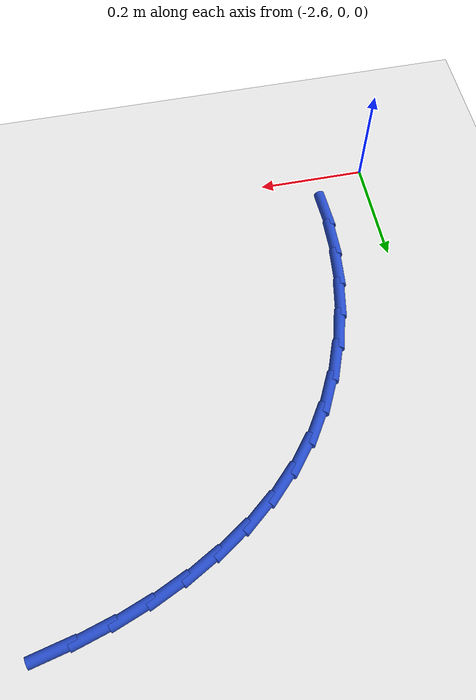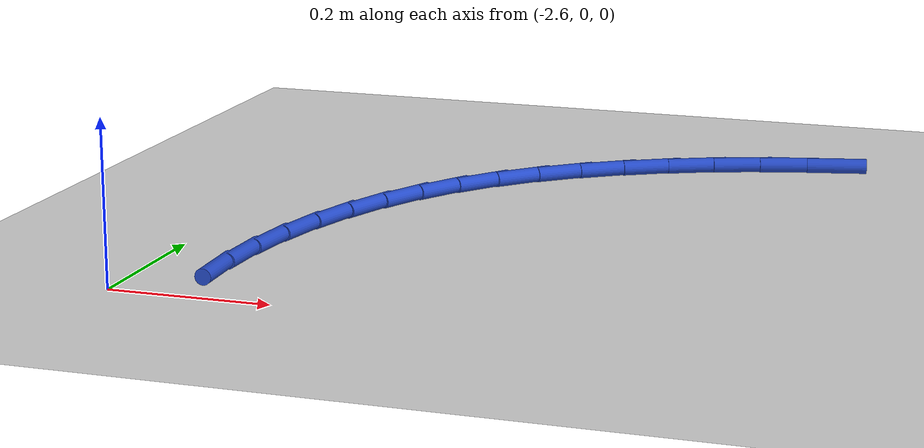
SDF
<sdf version="1.6">
 <world name="default">
  <model name="ground_plane">
   <static>1</static>
   <link name="link">
    <collision name="collision">
     <geometry><plane><normal>0 0 1</normal><size>100 100</size></plane></geometry>
     <surface><friction><ode><mu>100</mu><mu2>50</mu2></ode></friction></surface>
    </collision>
    <visual name="visual">
     <cast_shadows>0</cast_shadows>
     <geometry><plane><normal>0 0 1</normal><size>100 100</size></plane></geometry>
     <material>
      <script><uri>file://media/materials/scripts/gazebo.material</uri><name>Gazebo/WhiteGlow</name></script>
     </material>
    </visual>
   </link>
  </model>
  <model name="line">
   <link name="link_49">
    <pose>-1.9124163300353045 0.7932005984416014 0.01 0 1.57 0.2266838382392653</pose>
    <collision name="collision">
     <geometry><cylinder><radius>0.01</radius><length>0.08</length></cylinder></geometry>
    </collision>
    <visual name="visual">
     <material>
      <script><name>Gazebo/Blue</name><uri>file://media/materials/scripts/gazebo.material</uri></script>
     </material>
     <geometry><cylinder><radius>0.01</radius><length>0.08</length></cylinder></geometry>
    </visual>
   </link>
   <link name="link_50">
    <pose>-1.9746820280121145 0.7788391335463097 0.01 0 1.57 0.29029542727341956</pose>
    <collision name="collision">
     <geometry><cylinder><radius>0.01</radius><length>0.08</length></cylinder></geometry>
    </collision>
    <visual name="visual">
     <material>
      <script><name>Gazebo/Blue</name><uri>file://media/materials/scripts/gazebo.material</uri></script>
     </material>
     <geometry><cylinder><radius>0.01</radius><length>0.08</length></cylinder></geometry>
    </visual>
   </link>
   <link name="link_51">
    <pose>-2.0353917045752734 0.7607030556330867 0.01 0 1.57 0.3588798051660564</pose>
    <collision name="collision">
     <geometry><cylinder><radius>0.01</radius><length>0.08</length></cylinder></geometry>
    </collision>
    <visual name="visual">
     <material>
      <script><name>Gazebo/Blue</name><uri>file://media/materials/scripts/gazebo.material</uri></script>
     </material>
     <geometry><cylinder><radius>0.01</radius><length>0.08</length></cylinder></geometry>
    </visual>
   </link>
   <link name="link_52">
    <pose>-2.0941190779093177 0.7386729798332827 0.01 0 1.57 0.43314193551123753</pose>
    <collision name="collision">
     <geometry><cylinder><radius>0.01</radius><length>0.08</length></cylinder></geometry>
    </collision>
    <visual name="visual">
     <material>
      <script><name>Gazebo/Blue</name><uri>file://media/materials/scripts/gazebo.material</uri></script>
     </material>
     <geometry><cylinder><radius>0.01</radius><length>0.08</length></cylinder></geometry>
    </visual>
   </link>
   <link name="link_53">
    <pose>-2.150437866198786 0.7126295212782485 0.01 0 1.57 0.5136883938624911</pose>
    <collision name="collision">
     <geometry><cylinder><radius>0.01</radius><length>0.08</length></cylinder></geometry>
    </collision>
    <visual name="visual">
     <material>
      <script><name>Gazebo/Blue</name><uri>file://media/materials/scripts/gazebo.material</uri></script>
     </material>
     <geometry><cylinder><radius>0.01</radius><length>0.08</length></cylinder></geometry>
    </visual>
   </link>
   <link name="link_54">
    <pose>-2.2039217876282144 0.6824532950993341 0.01 0 1.57 0.6009370354927155</pose>
    <collision name="collision">
     <geometry><cylinder><radius>0.01</radius><length>0.08</length></cylinder></geometry>
    </collision>
    <visual name="visual">
     <material>
      <script><name>Gazebo/Blue</name><uri>file://media/materials/scripts/gazebo.material</uri></script>
     </material>
     <geometry><cylinder><radius>0.01</radius><length>0.08</length></cylinder></geometry>
    </visual>
   </link>
   <link name="link_55">
    <pose>-2.25414456038214 0.6480249164278903 0.01 0 1.57 0.6949977475820621</pose>
    <collision name="collision">
     <geometry><cylinder><radius>0.01</radius><length>0.08</length></cylinder></geometry>
    </collision>
    <visual name="visual">
     <material>
      <script><name>Gazebo/Blue</name><uri>file://media/materials/scripts/gazebo.material</uri></script>
     </material>
     <geometry><cylinder><radius>0.01</radius><length>0.08</length></cylinder></geometry>
    </visual>
   </link>
   <link name="link_56">
    <pose>-2.3006799026451006 0.6092250003952681 0.01 0 1.57 0.7955387943875205</pose>
    <collision name="collision">
     <geometry><cylinder><radius>0.01</radius><length>0.08</length></cylinder></geometry>
    </collision>
    <visual name="visual">
     <material>
      <script><name>Gazebo/Blue</name><uri>file://media/materials/scripts/gazebo.material</uri></script>
     </material>
     <geometry><cylinder><radius>0.01</radius><length>0.08</length></cylinder></geometry>
    </visual>
   </link>
   <link name="link_57">
    <pose>-2.343101532601632 0.5659341621328176 0.01 0 1.57 0.9016722590337981</pose>
    <collision name="collision">
     <geometry><cylinder><radius>0.01</radius><length>0.08</length></cylinder></geometry>
    </collision>
    <visual name="visual">
     <material>
      <script><name>Gazebo/Blue</name><uri>file://media/materials/scripts/gazebo.material</uri></script>
     </material>
     <geometry><cylinder><radius>0.01</radius><length>0.08</length></cylinder></geometry>
    </visual>
   </link>
   <link name="link_58">
    <pose>-2.380983168436272 0.518033016771889 0.01 0 1.57 1.0107775627489453</pose>
    <collision name="collision">
     <geometry><cylinder><radius>0.01</radius><length>0.08</length></cylinder></geometry>
    </collision>
    <visual name="visual">
     <material>
      <script><name>Gazebo/Blue</name><uri>file://media/materials/scripts/gazebo.material</uri></script>
     </material>
     <geometry><cylinder><radius>0.01</radius><length>0.08</length></cylinder></geometry>
    </visual>
   </link>
   <link name="link_59">
    <pose>-2.413935900661176 0.46547478597662545 0.01 0 1.57 1.1138212560135208</pose>
    <collision name="collision">
     <geometry><cylinder><radius>0.01</radius><length>0.08</length></cylinder></geometry>
    </collision>
    <visual name="visual">
     <material>
      <script><name>Gazebo/Blue</name><uri>file://media/materials/scripts/gazebo.material</uri></script>
     </material>
     <geometry><cylinder><radius>0.01</radius><length>0.08</length></cylinder></geometry>
    </visual>
   </link>
   <link name="link_60">
    <pose>-2.441836824898733 0.4087294831121305 0.01 0 1.57 1.20836005556983</pose>
    <collision name="collision">
     <geometry><cylinder><radius>0.01</radius><length>0.08</length></cylinder></geometry>
    </collision>
    <visual name="visual">
     <material>
      <script><name>Gazebo/Blue</name><uri>file://media/materials/scripts/gazebo.material</uri></script>
     </material>
     <geometry><cylinder><radius>0.01</radius><length>0.08</length></cylinder></geometry>
    </visual>
   </link>
   <link name="link_61">
    <pose>-2.464678383623534 0.3484912160952889 0.01 0 1.57 1.2959503272801434</pose>
    <collision name="collision">
     <geometry><cylinder><radius>0.01</radius><length>0.08</length></cylinder></geometry>
    </collision>
    <visual name="visual">
     <material>
      <script><name>Gazebo/Blue</name><uri>file://media/materials/scripts/gazebo.material</uri></script>
     </material>
     <geometry><cylinder><radius>0.01</radius><length>0.08</length></cylinder></geometry>
    </visual>
   </link>
   <link name="link_62">
    <pose>-2.482453485287029 0.2854549981375278 0.01 0 1.57 1.3782216612867484</pose>
    <collision name="collision">
     <geometry><cylinder><radius>0.01</radius><length>0.08</length></cylinder></geometry>
    </collision>
    <visual name="visual">
     <material>
      <script><name>Gazebo/Blue</name><uri>file://media/materials/scripts/gazebo.material</uri></script>
     </material>
     <geometry><cylinder><radius>0.01</radius><length>0.08</length></cylinder></geometry>
    </visual>
   </link>
   <link name="link_63">
    <pose>-2.4951550383406693 0.22031584245027486 0.01 0 1.57 1.4567739317656692</pose>
    <collision name="collision">
     <geometry><cylinder><radius>0.01</radius><length>0.08</length></cylinder></geometry>
    </collision>
    <visual name="visual">
     <material>
      <script><name>Gazebo/Blue</name><uri>file://media/materials/scripts/gazebo.material</uri></script>
     </material>
     <geometry><cylinder><radius>0.01</radius><length>0.08</length></cylinder></geometry>
    </visual>
   </link>
   <link name="link_64">
    <pose>-2.502775951235906 0.15376876224495792 0.01 0 1.57 1.533151593187008</pose>
    <collision name="collision">
     <geometry><cylinder><radius>0.01</radius><length>0.08</length></cylinder></geometry>
    </collision>
    <visual name="visual">
     <material>
      <script><name>Gazebo/Blue</name><uri>file://media/materials/scripts/gazebo.material</uri></script>
     </material>
     <geometry><cylinder><radius>0.01</radius><length>0.08</length></cylinder></geometry>
    </visual>
   </link>
   <link name="link_65">
    <pose>-2.505309132424189 0.08650877073300403 0.01 0 1.57 -1.532739169428454</pose>
    <collision name="collision">
     <geometry><cylinder><radius>0.01</radius><length>0.08</length></cylinder></geometry>
    </collision>
    <visual name="visual">
     <material>
      <script><name>Gazebo/Blue</name><uri>file://media/materials/scripts/gazebo.material</uri></script>
     </material>
     <geometry><cylinder><radius>0.01</radius><length>0.08</length></cylinder></geometry>
    </visual>
   </link>
  </model>
 </world>
</sdf>
